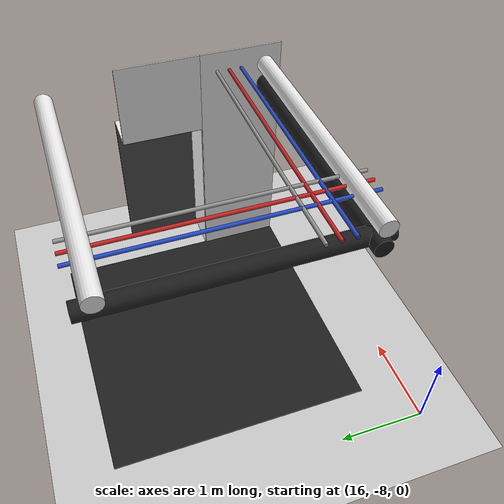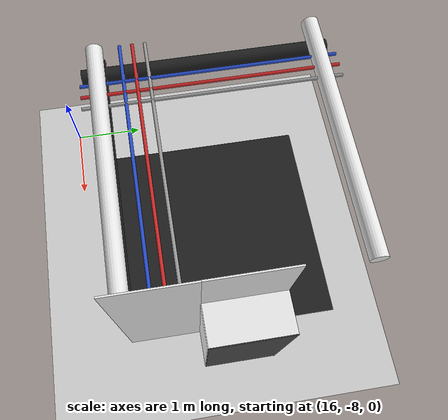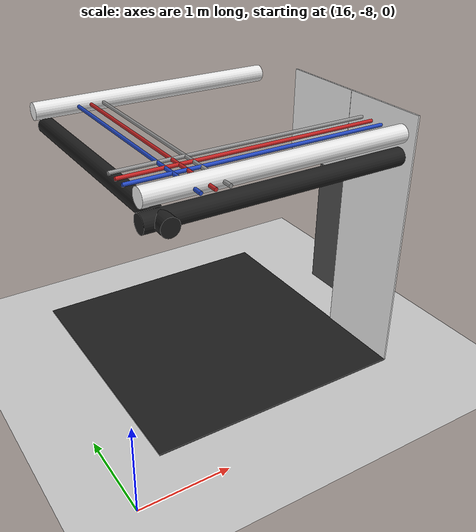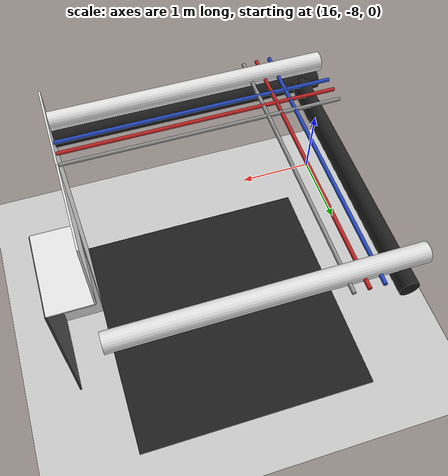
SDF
<sdf version="1.6">
 <world name="default">
  <model name="ground_plane">
   <static>1</static>
   <link name="link">
    <collision name="collision">
     <geometry><plane><normal>0 0 1</normal><size>200 200</size></plane></geometry>
     <surface><friction><ode><mu>100</mu><mu2>50</mu2></ode></friction></surface>
    </collision>
    <visual name="visual">
     <cast_shadows>0</cast_shadows>
     <geometry><plane><normal>0 0 1</normal><size>200 200</size></plane></geometry>
     <material>
      <script><uri>file://media/materials/scripts/gazebo.material</uri><name>Gazebo/Grey</name></script>
     </material>
    </visual>
   </link>
  </model>
  <model name="black_pipe_right_6_-2_0_2">
   <static>1</static>
   <pose>18.0 -6.0 2.76 0.0 0.0 3.14</pose>
   <link name="link_0">
    <visual name="visual">
     <pose>1.3 0 -0.25 1.57 0 0</pose>
     <geometry><cylinder><radius>0.1</radius><length>3</length></cylinder></geometry>
     <material>
      <script><uri>file://media/materials/scripts/gazebo.material</uri><name>Gazebo/Black</name></script>
     </material>
    </visual>
    <collision name="collision">
     <pose>1.3 0 -0.25 1.57 0 0</pose>
     <geometry><cylinder><radius>0.1</radius><length>3</length></cylinder></geometry>
    </collision>
   </link>
  </model>
  <model name="grey_pipe_right_6_-2_0_2">
   <static>1</static>
   <pose>18.0 -6.0 2.76 0.0 0.0 3.14</pose>
   <link name="link_0">
    <visual name="visual">
     <pose>0.7 0 0 1.57 0 0</pose>
     <geometry><cylinder><radius>0.02</radius><length>3</length></cylinder></geometry>
     <material>
      <script><uri>file://media/materials/scripts/gazebo.material</uri><name>Gazebo/Grey</name></script>
     </material>
    </visual>
    <collision name="collision">
     <pose>0.7 0 0 1.57 0 0</pose>
     <geometry><cylinder><radius>0.02</radius><length>3</length></cylinder></geometry>
    </collision>
   </link>
  </model>
  <model name="red_pipe_right_6_-2_0_2">
   <static>1</static>
   <pose>18.0 -6.0 2.76 0.0 0.0 3.14</pose>
   <link name="link_0">
    <visual name="visual">
     <pose>0.85 0 0 1.57 0 0</pose>
     <geometry><cylinder><radius>0.02</radius><length>3</length></cylinder></geometry>
     <material>
      <script><uri>file://media/materials/scripts/gazebo.material</uri><name>Gazebo/Red</name></script>
     </material>
    </visual>
    <collision name="collision">
     <pose>0.85 0 0 1.57 0 0</pose>
     <geometry><cylinder><radius>0.02</radius><length>3</length></cylinder></geometry>
    </collision>
   </link>
  </model>
  <model name="blue_pipe_right_6_-2_0_2">
   <static>1</static>
   <pose>18.0 -6.0 2.76 0.0 0.0 3.14</pose>
   <link name="link_0">
    <visual name="visual">
     <pose>1 0 0 1.57 0 0</pose>
     <geometry><cylinder><radius>0.02</radius><length>3</length></cylinder></geometry>
     <material>
      <script><uri>file://media/materials/scripts/gazebo.material</uri><name>Gazebo/Blue</name></script>
     </material>
    </visual>
    <collision name="collision">
     <pose>1 0 0 1.57 0 0</pose>
     <geometry><cylinder><radius>0.02</radius><length>3</length></cylinder></geometry>
    </collision>
   </link>
  </model>
  <model name="white_pipe_left_1_6_-2_0_2">
   <static>1</static>
   <pose>18.0 -6.0 2.76 0.0 0.0 4.71</pose>
   <link name="link_0">
    <visual name="visual">
     <pose>-1.3 0 0 1.57 0 0</pose>
     <geometry><cylinder><radius>0.1</radius><length>3</length></cylinder></geometry>
     <material>
      <script><uri>file://media/materials/scripts/gazebo.material</uri><name>Gazebo/White</name></script>
     </material>
    </visual>
    <collision name="collision">
     <pose>-1.3 0 0 1.57 0 0</pose>
     <geometry><cylinder><radius>0.1</radius><length>3</length></cylinder></geometry>
    </collision>
   </link>
  </model>
  <model name="white_pipe_right_1_6_-2_0_2">
   <static>1</static>
   <pose>18.0 -6.0 2.76 0.0 0.0 4.71</pose>
   <link name="link_0">
    <visual name="visual">
     <pose>1.3 0 0 1.57 0 0</pose>
     <geometry><cylinder><radius>0.1</radius><length>3</length></cylinder></geometry>
     <material>
      <script><uri>file://media/materials/scripts/gazebo.material</uri><name>Gazebo/White</name></script>
     </material>
    </visual>
    <collision name="collision">
     <pose>1.3 0 0 1.57 0 0</pose>
     <geometry><cylinder><radius>0.1</radius><length>3</length></cylinder></geometry>
    </collision>
   </link>
  </model>
  <model name="black_pipe_right_1_6_-2_0_2">
   <static>1</static>
   <pose>18.0 -6.0 2.76 0.0 0.0 4.71</pose>
   <link name="link_0">
    <visual name="visual">
     <pose>1.3 0 -0.25 1.57 0 0</pose>
     <geometry><cylinder><radius>0.1</radius><length>3</length></cylinder></geometry>
     <material>
      <script><uri>file://media/materials/scripts/gazebo.material</uri><name>Gazebo/Black</name></script>
     </material>
    </visual>
    <collision name="collision">
     <pose>1.3 0 -0.25 1.57 0 0</pose>
     <geometry><cylinder><radius>0.1</radius><length>3</length></cylinder></geometry>
    </collision>
   </link>
  </model>
  <model name="grey_pipe_right_1_6_-2_0_2">
   <static>1</static>
   <pose>18.0 -6.0 2.76 0.0 0.0 4.71</pose>
   <link name="link_0">
    <visual name="visual">
     <pose>0.7 0 0 1.57 0 0</pose>
     <geometry><cylinder><radius>0.02</radius><length>3</length></cylinder></geometry>
     <material>
      <script><uri>file://media/materials/scripts/gazebo.material</uri><name>Gazebo/Grey</name></script>
     </material>
    </visual>
    <collision name="collision">
     <pose>0.7 0 0 1.57 0 0</pose>
     <geometry><cylinder><radius>0.02</radius><length>3</length></cylinder></geometry>
    </collision>
   </link>
  </model>
  <model name="red_pipe_right_1_6_-2_0_2">
   <static>1</static>
   <pose>18.0 -6.0 2.76 0.0 0.0 4.71</pose>
   <link name="link_0">
    <visual name="visual">
     <pose>0.85 0 0 1.57 0 0</pose>
     <geometry><cylinder><radius>0.02</radius><length>3</length></cylinder></geometry>
     <material>
      <script><uri>file://media/materials/scripts/gazebo.material</uri><name>Gazebo/Red</name></script>
     </material>
    </visual>
    <collision name="collision">
     <pose>0.85 0 0 1.57 0 0</pose>
     <geometry><cylinder><radius>0.02</radius><length>3</length></cylinder></geometry>
    </collision>
   </link>
  </model>
  <model name="blue_pipe_right_1_6_-2_0_2">
   <static>1</static>
   <pose>18.0 -6.0 2.76 0.0 0.0 4.71</pose>
   <link name="link_0">
    <visual name="visual">
     <pose>1 0 0 1.57 0 0</pose>
     <geometry><cylinder><radius>0.02</radius><length>3</length></cylinder></geometry>
     <material>
      <script><uri>file://media/materials/scripts/gazebo.material</uri><name>Gazebo/Blue</name></script>
     </material>
    </visual>
    <collision name="collision">
     <pose>1 0 0 1.57 0 0</pose>
     <geometry><cylinder><radius>0.02</radius><length>3</length></cylinder></geometry>
    </collision>
   </link>
  </model>
  <model name="wall_left_front_left_6_-2_0_2">
   <static>1</static>
   <pose>19.5 -7.0 1.5 0.0 0.0 4.71</pose>
   <link name="link">
    <collision name="collision"><geometry><box><size>1.0 0.02 3</size></box></geometry></collision>
    <visual name="visual">
     <material>
      <script><name>Gazebo/White</name><uri>file://media/materials/scripts/gazebo.material</uri></script>
     </material>
     <geometry><box><size>1.0 0.02 3</size></box></geometry>
    </visual>
   </link>
  </model>
  <model name="wall_left_front_up_6_-2_0_2">
   <static>1</static>
   <pose>19.5 -6.0 2.5 0.0 0.0 4.71</pose>
   <link name="link">
    <collision name="collision"><geometry><box><size>1.0 0.02 1</size></box></geometry></collision>
    <visual name="visual">
     <material>
      <script><name>Gazebo/White</name><uri>file://media/materials/scripts/gazebo.material</uri></script>
     </material>
     <geometry><box><size>1.0 0.02 1</size></box></geometry>
    </visual>
   </link>
  </model>
  <model name="wall_left_inside_back_6_-2_0_2">
   <static>1</static>
   <pose>20.0 -6.0 1.0 0.0 0.0 4.71</pose>
   <link name="link">
    <collision name="collision"><geometry><box><size>1 0.02 2</size></box></geometry></collision>
    <visual name="visual">
     <material>
      <script><name>Gazebo/DarkGrey</name><uri>file://media/materials/scripts/gazebo.material</uri></script>
     </material>
     <geometry><box><size>1 0.02 2</size></box></geometry>
    </visual>
   </link>
  </model>
  <model name="wall_left_inside_left_6_-2_0_2">
   <static>1</static>
   <pose>19.75 -6.5 1.0 0.0 0.0 3.14</pose>
   <link name="link">
    <collision name="collision"><geometry><box><size>0.5 0.02 2</size></box></geometry></collision>
    <visual name="visual">
     <material>
      <script><name>Gazebo/White</name><uri>file://media/materials/scripts/gazebo.material</uri></script>
     </material>
     <geometry><box><size>0.5 0.02 2</size></box></geometry>
    </visual>
   </link>
  </model>
  <model name="wall_left_inside_top_6_-2_0_2">
   <static>1</static>
   <pose>19.75 -6.0 2.0 1.57 0.0 4.71</pose>
   <link name="link">
    <collision name="collision"><geometry><box><size>1 0.02 0.5</size></box></geometry></collision>
    <visual name="visual">
     <material>
      <script><name>Gazebo/White</name><uri>file://media/materials/scripts/gazebo.material</uri></script>
     </material>
     <geometry><box><size>1 0.02 0.5</size></box></geometry>
    </visual>
   </link>
  </model>
  <model name="wall_bottom_6_-2_0_2">
   <static>1</static>
   <pose>18.0 -6.0 0.0 0.0 0.0 3.14</pose>
   <link name="link">
    <collision name="collision"><geometry><box><size>3 3 0.02</size></box></geometry></collision>
    <visual name="visual">
     <material>
      <script><name>Gazebo/Black</name><uri>file://media/materials/scripts/gazebo.material</uri></script>
     </material>
     <geometry><box><size>3 3 0.02</size></box></geometry>
    </visual>
   </link>
  </model>
 </world>
</sdf>
